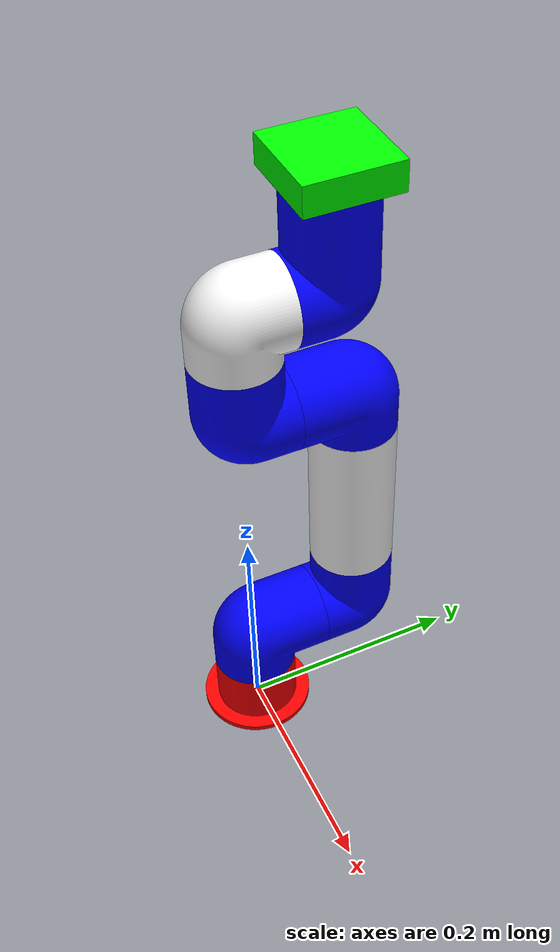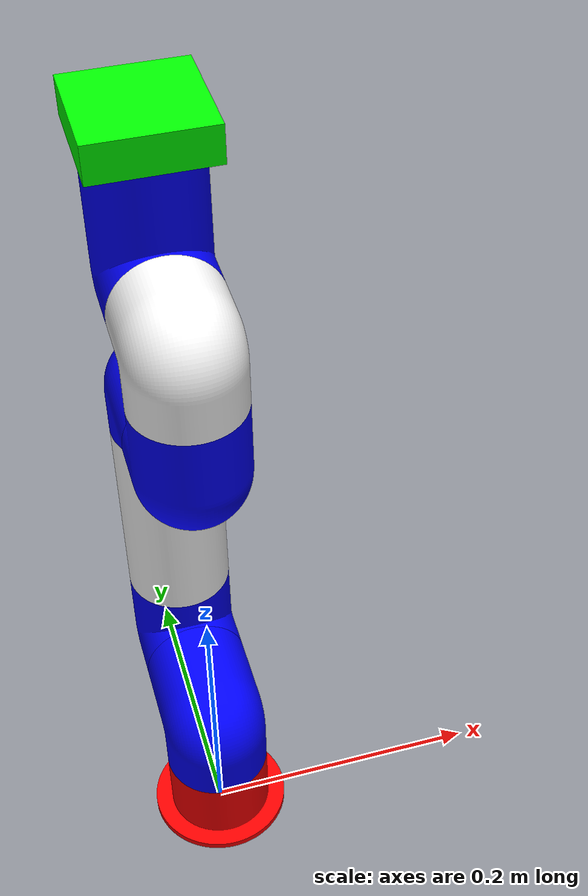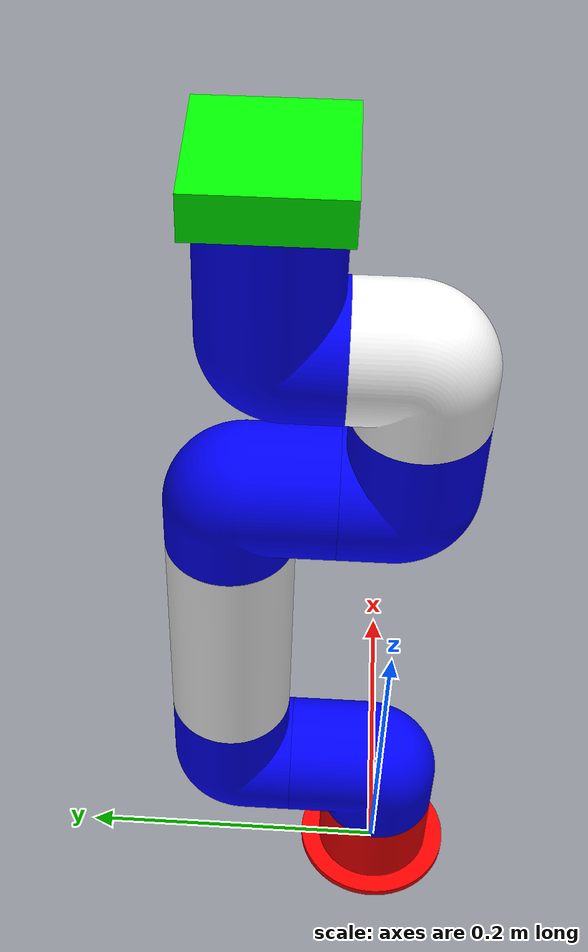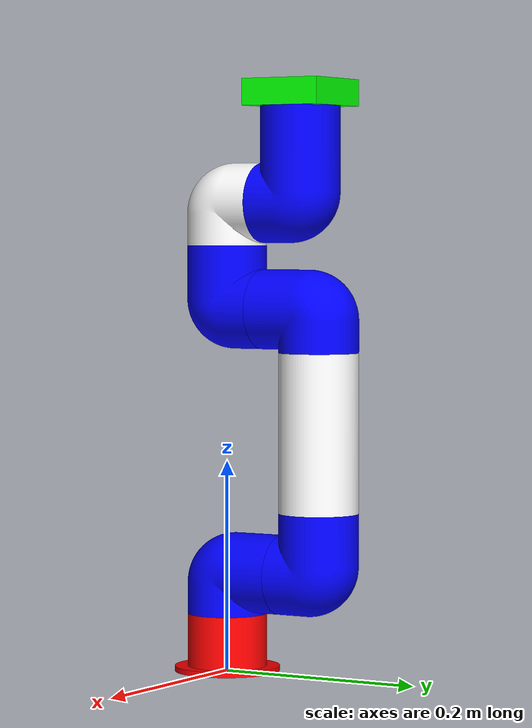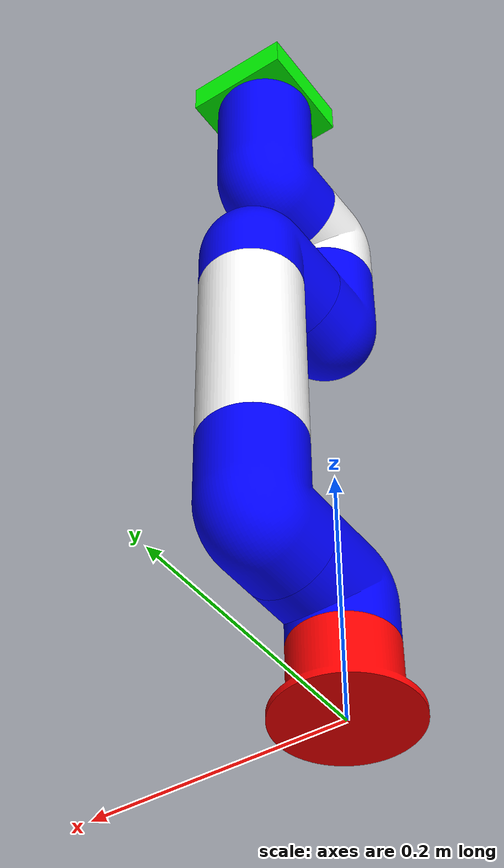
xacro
<?xml version="1.0"?>
<robot xmlns:xacro="http://www.ros.org/wiki/xacro" name="dof">
    <xacro:arg name="initial_positions_file" default="initial_positions.yaml" />

    <!-- Import dof urdf file -->
    <xacro:include filename="$(find dof_description)/urdf/dof.xacro" />

    <!-- Import control_xacro -->
    <xacro:include filename="dof.ros2_control.xacro" />

    <xacro:dof_ros2_control name="FakeSystem" initial_positions_file="$(arg initial_positions_file)"/>

</robot>

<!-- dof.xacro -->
<robot name="dof" xmlns:xacro="http://www.ros.org/wiki/xacro">

<xacro:include filename="$(find dof_description)/urdf/materials.xacro" />
<xacro:property name="gazebo_control" value="false" />
<link name="base_link">
  <inertial>
    <origin xyz="-8.739657509618157e-18 -8.739657509618157e-18 0.02584905660377358" rpy="0 0 0"/>
    <mass value="2.042280661759427"/>
    <inertia ixx="0.001362" iyy="0.001362" izz="0.001605" ixy="-0.0" iyz="-0.0" ixz="-0.0"/>
  </inertial>
  <visual>
    <origin xyz="0 0 0" rpy="0 0 0"/>
    <geometry>
      <mesh filename="file://$(find dof_description)/meshes/base_link.stl" scale="0.001 0.001 0.001"/>
    </geometry>
    <material name="red"/>
  </visual>
  <collision>
    <origin xyz="0 0 0" rpy="0 0 0"/>
    <geometry>
      <mesh filename="file://$(find dof_description)/meshes/base_link.stl" scale="0.001 0.001 0.001"/>
    </geometry>
  </collision>
</link>

<link name="link_1_1">
  <inertial>
    <origin xyz="2.3524251218189366e-16 0.014974083891179248 0.035655581197820606" rpy="0 0 0"/>
    <mass value="3.262589887941621"/>
    <inertia ixx="0.003411" iyy="0.002438" izz="0.003281" ixy="0.0" iyz="-0.000317" ixz="-0.0"/>
  </inertial>
  <visual>
    <origin xyz="-0.0 -0.0 -0.055" rpy="0 0 0"/>
    <geometry>
      <mesh filename="file://$(find dof_description)/meshes/link_1_1.stl" scale="0.001 0.001 0.001"/>
    </geometry>
    <material name="blue"/>
  </visual>
  <collision>
    <origin xyz="-0.0 -0.0 -0.055" rpy="0 0 0"/>
    <geometry>
      <mesh filename="file://$(find dof_description)/meshes/link_1_1.stl" scale="0.001 0.001 0.001"/>
    </geometry>
  </collision>
</link>

<link name="link_2_1">
  <inertial>
    <origin xyz="2.297717551265364e-16 0.035655580687491875 0.014974084374495322" rpy="0 0 0"/>
    <mass value="3.262589901545991"/>
    <inertia ixx="0.003411" iyy="0.003281" izz="0.002438" ixy="-0.0" iyz="-0.000317" ixz="0.0"/>
  </inertial>
  <visual>
    <origin xyz="-0.0 -0.06 -0.095" rpy="0 0 0"/>
    <geometry>
      <mesh filename="file://$(find dof_description)/meshes/link_2_1.stl" scale="0.001 0.001 0.001"/>
    </geometry>
    <material name="blue"/>
  </visual>
  <collision>
    <origin xyz="-0.0 -0.06 -0.095" rpy="0 0 0"/>
    <geometry>
      <mesh filename="file://$(find dof_description)/meshes/link_2_1.stl" scale="0.001 0.001 0.001"/>
    </geometry>
  </collision>
</link>

<link name="link_3_1">
  <inertial>
    <origin xyz="0.0 5.960464899423812e-10 0.07499999970197677" rpy="0 0 0"/>
    <mass value="5.2020356478777865"/>
    <inertia ixx="0.011583" iyy="0.011583" izz="0.003658" ixy="-0.0" iyz="-0.0" ixz="0.0"/>
  </inertial>
  <visual>
    <origin xyz="-0.0 -0.1 -0.155" rpy="0 0 0"/>
    <geometry>
      <mesh filename="file://$(find dof_description)/meshes/link_3_1.stl" scale="0.001 0.001 0.001"/>
    </geometry>
    <material name="silver"/>
  </visual>
  <collision>
    <origin xyz="-0.0 -0.1 -0.155" rpy="0 0 0"/>
    <geometry>
      <mesh filename="file://$(find dof_description)/meshes/link_3_1.stl" scale="0.001 0.001 0.001"/>
    </geometry>
  </collision>
</link>

<link name="link_4_1">
  <inertial>
    <origin xyz="-4.704850156962961e-16 -0.014974083732903307 0.03565558091031645" rpy="0 0 0"/>
    <mass value="3.2625899480465512"/>
    <inertia ixx="0.003411" iyy="0.002438" izz="0.003281" ixy="-0.0" iyz="0.000317" ixz="-0.0"/>
  </inertial>
  <visual>
    <origin xyz="-0.0 -0.1 -0.305" rpy="0 0 0"/>
    <geometry>
      <mesh filename="file://$(find dof_description)/meshes/link_4_1.stl" scale="0.001 0.001 0.001"/>
    </geometry>
    <material name="blue"/>
  </visual>
  <collision>
    <origin xyz="-0.0 -0.1 -0.305" rpy="0 0 0"/>
    <geometry>
      <mesh filename="file://$(find dof_description)/meshes/link_4_1.stl" scale="0.001 0.001 0.001"/>
    </geometry>
  </collision>
</link>

<link name="link_5_1">
  <inertial>
    <origin xyz="-7.111982949821138e-16 -0.03565558019427084 0.014974084426305323" rpy="0 0 0"/>
    <mass value="3.262589877210741"/>
    <inertia ixx="0.003411" iyy="0.003281" izz="0.002438" ixy="0.0" iyz="0.000317" ixz="0.0"/>
  </inertial>
  <visual>
    <origin xyz="-0.0 -0.04 -0.345" rpy="0 0 0"/>
    <geometry>
      <mesh filename="file://$(find dof_description)/meshes/link_5_1.stl" scale="0.001 0.001 0.001"/>
    </geometry>
    <material name="blue"/>
  </visual>
  <collision>
    <origin xyz="-0.0 -0.04 -0.345" rpy="0 0 0"/>
    <geometry>
      <mesh filename="file://$(find dof_description)/meshes/link_5_1.stl" scale="0.001 0.001 0.001"/>
    </geometry>
  </collision>
</link>

<link name="link_6_1">
  <inertial>
    <origin xyz="2.918082330107905e-16 0.0055173768124723585 0.03448262292119847" rpy="0 0 0"/>
    <mass value="2.568985118074497"/>
    <inertia ixx="0.002047" iyy="0.001933" izz="0.001933" ixy="0.0" iyz="-0.000183" ixz="-0.0"/>
  </inertial>
  <visual>
    <origin xyz="-0.0 -0.0 -0.405" rpy="0 0 0"/>
    <geometry>
      <mesh filename="file://$(find dof_description)/meshes/link_6_1.stl" scale="0.001 0.001 0.001"/>
    </geometry>
    <material name="silver"/>
  </visual>
  <collision>
    <origin xyz="-0.0 -0.0 -0.405" rpy="0 0 0"/>
    <geometry>
      <mesh filename="file://$(find dof_description)/meshes/link_6_1.stl" scale="0.001 0.001 0.001"/>
    </geometry>
  </collision>
</link>

<link name="link_7_1">
  <inertial>
    <origin xyz="1.7421601609911105e-16 0.03670600347430395 0.029487547207557585" rpy="0 0 0"/>
    <mass value="4.302997076398886"/>
    <inertia ixx="0.006712" iyy="0.006567" izz="0.003184" ixy="-0.0" iyz="-0.000523" ixz="0.0"/>
  </inertial>
  <visual>
    <origin xyz="-0.0 -0.04 -0.445" rpy="0 0 0"/>
    <geometry>
      <mesh filename="file://$(find dof_description)/meshes/link_7_1.stl" scale="0.001 0.001 0.001"/>
    </geometry>
    <material name="blue"/>
  </visual>
  <collision>
    <origin xyz="-0.0 -0.04 -0.445" rpy="0 0 0"/>
    <geometry>
      <mesh filename="file://$(find dof_description)/meshes/link_7_1.stl" scale="0.001 0.001 0.001"/>
    </geometry>
  </collision>
</link>

<link name="link_8_1">
  <inertial>
    <origin xyz="0.0 5.960468923982276e-10 0.012499999701976794" rpy="0 0 0"/>
    <mass value="1.2559999812841276"/>
    <inertia ixx="0.000735" iyy="0.000735" izz="0.00134" ixy="0.0" iyz="0.0" ixz="0.0"/>
  </inertial>
  <visual>
    <origin xyz="-0.0 -0.08 -0.535" rpy="0 0 0"/>
    <geometry>
      <mesh filename="file://$(find dof_description)/meshes/link_8_1.stl" scale="0.001 0.001 0.001"/>
    </geometry>
    <material name="green"/>
  </visual>
  <collision>
    <origin xyz="-0.0 -0.08 -0.535" rpy="0 0 0"/>
    <geometry>
      <mesh filename="file://$(find dof_description)/meshes/link_8_1.stl" scale="0.001 0.001 0.001"/>
    </geometry>
  </collision>
</link>

<joint name="revolute_1" type="continuous">
  <origin xyz="0.0 0.0 0.055" rpy="0 0 0"/>
  <parent link="base_link"/>
  <child link="link_1_1"/>
  <axis xyz="0.0 0.0 1.0"/>
  <dynamics damping="10.0" friction="10.0"/>
</joint>

<joint name="revolute_2" type="revolute">
  <origin xyz="0.0 0.06 0.04" rpy="0 0 0"/>
  <parent link="link_1_1"/>
  <child link="link_2_1"/>
  <axis xyz="0.0 1.0 0.0"/>
  <limit upper="1.570796" lower="-1.570796" effort="100" velocity="100"/>
  <dynamics damping="10.0" friction="10.0"/>
</joint>

<joint name="rigid_3" type="fixed">
  <origin xyz="0.0 0.04 0.06" rpy="0 0 0"/>
  <parent link="link_2_1"/>
  <child link="link_3_1"/>
  <dynamics damping="10.0" friction="10.0"/>
</joint>

<joint name="revolute_4" type="continuous">
  <origin xyz="0.0 0.0 0.15" rpy="0 0 0"/>
  <parent link="link_3_1"/>
  <child link="link_4_1"/>
  <axis xyz="0.0 0.0 1.0"/>
  <dynamics damping="10.0" friction="10.0"/>
</joint>

<joint name="revolute_5" type="revolute">
  <origin xyz="0.0 -0.06 0.04" rpy="0 0 0"/>
  <parent link="link_4_1"/>
  <child link="link_5_1"/>
  <axis xyz="0.0 -1.0 0.0"/>
  <limit upper="2.356194" lower="-2.356194" effort="100" velocity="100"/>
  <dynamics damping="10.0" friction="10.0"/>
</joint>

<joint name="revolute_6" type="continuous">
  <origin xyz="0.0 -0.04 0.06" rpy="0 0 0"/>
  <parent link="link_5_1"/>
  <child link="link_6_1"/>
  <axis xyz="0.0 0.0 1.0"/>
  <dynamics damping="10.0" friction="10.0"/>
</joint>

<joint name="revolute_7" type="continuous">
  <origin xyz="0.0 0.04 0.04" rpy="0 0 0"/>
  <parent link="link_6_1"/>
  <child link="link_7_1"/>
  <axis xyz="0.0 1.0 0.0"/>
  <dynamics damping="10.0" friction="10.0"/>
</joint>

<joint name="revolute_8" type="continuous">
  <origin xyz="0.0 0.04 0.09" rpy="0 0 0"/>
  <parent link="link_7_1"/>
  <child link="link_8_1"/>
  <axis xyz="0.0 0.0 1.0"/>
  <dynamics damping="10.0" friction="10.0"/>
</joint>

<!--world-->
<link name="world"></link>
<joint name="base_joint" type="fixed">
  <origin xyz="0 0 0" rpy="0 0 0" />
  <parent link="world" />
  <child link="base_link" />
</joint>

</robot>

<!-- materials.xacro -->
<robot name="arm2" xmlns:xacro="http://www.ros.org/wiki/xacro" >

<material name="silver">
  <color rgba="1.000 1.000 1.000 1.000"/>
</material>

<material name="blue">
  <color rgba="0.000 0.000 1.000 1.000"/>
</material>

<material name="green">
  <color rgba="0.000 1.000 0.000 1.000"/>
</material>

<material name="red">
  <color rgba="1.000 0.000 0.000 1.000"/>
</material>

</robot>
